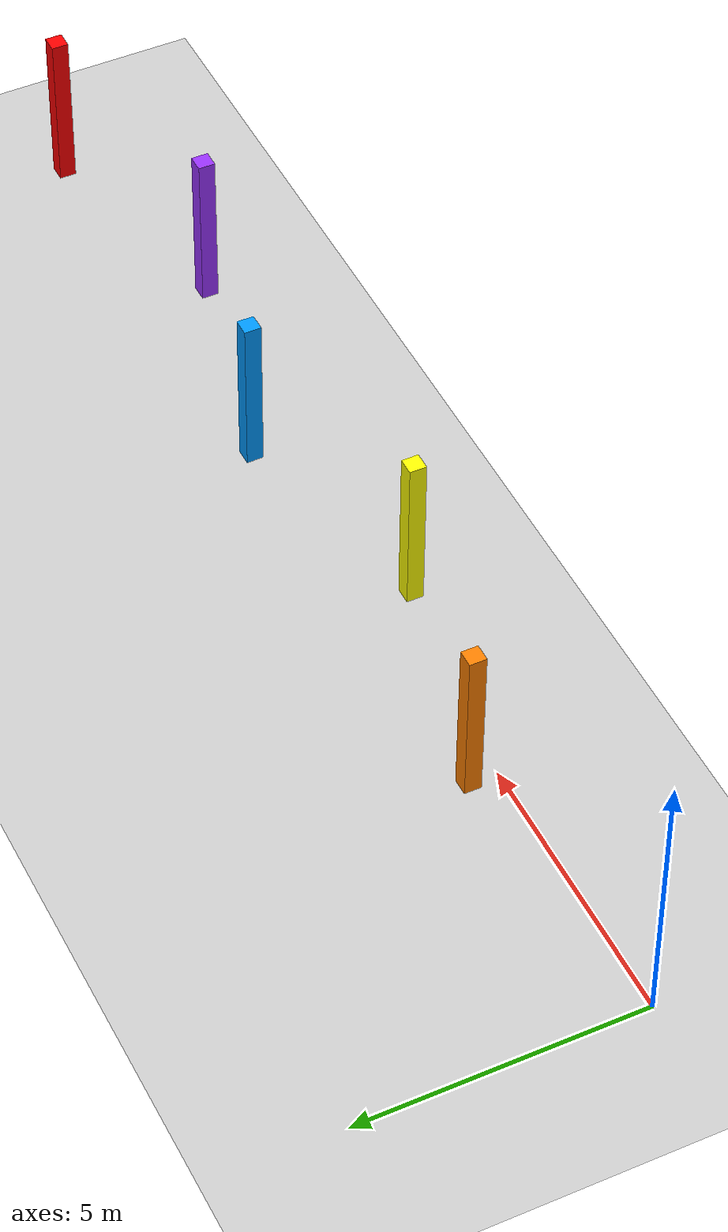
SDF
<sdf version="1.6">
 <world name="ground_world">
  <include><uri>model://sun</uri></include>
  <include><uri>model://ground_plane</uri></include>
  <model name="pole_1">
   <static>true</static>
   <pose>5.0 0.5 1.5 0 0 0</pose>
   <link name="link">
    <collision name="collision"><geometry><box><size>0.3 0.3 3</size></box></geometry></collision>
    <visual name="visual">
     <geometry><box><size>0.3 0.3 3</size></box></geometry>
     <material><ambient>1 0.5 0 1</ambient><diffuse>1 0.5 0 1</diffuse></material>
    </visual>
   </link>
  </model>
  <model name="pole_2">
   <static>true</static>
   <pose>9.0 -0.5 1.5 0 0 0</pose>
   <link name="link">
    <collision name="collision"><geometry><box><size>0.3 0.3 3</size></box></geometry></collision>
    <visual name="visual">
     <geometry><box><size>0.3 0.3 3</size></box></geometry>
     <material><ambient>1 1 0 1</ambient><diffuse>1 1 0 1</diffuse></material>
    </visual>
   </link>
  </model>
  <model name="pole_3">
   <static>true</static>
   <pose>13.0 0.5 1.5 0 0 0</pose>
   <link name="link">
    <collision name="collision"><geometry><box><size>0.3 0.3 3</size></box></geometry></collision>
    <visual name="visual">
     <geometry><box><size>0.3 0.3 3</size></box></geometry>
     <material><ambient>0 0.6 1 1</ambient><diffuse>0 0.6 1 1</diffuse></material>
    </visual>
   </link>
  </model>
  <model name="pole_4">
   <static>true</static>
   <pose>17.0 -0.5 1.5 0 0 0</pose>
   <link name="link">
    <collision name="collision"><geometry><box><size>0.3 0.3 3</size></box></geometry></collision>
    <visual name="visual">
     <geometry><box><size>0.3 0.3 3</size></box></geometry>
     <material><ambient>0.6 0.2 1 1</ambient><diffuse>0.6 0.2 1 1</diffuse></material>
    </visual>
   </link>
  </model>
  <model name="pole_5">
   <static>true</static>
   <pose>21.0 0.5 1.5 0 0 0</pose>
   <link name="link">
    <collision name="collision"><geometry><box><size>0.3 0.3 3</size></box></geometry></collision>
    <visual name="visual">
     <geometry><box><size>0.3 0.3 3</size></box></geometry>
     <material><ambient>1 0 0 1</ambient><diffuse>1 0 0 1</diffuse></material>
    </visual>
   </link>
  </model>
 </world>
</sdf>
